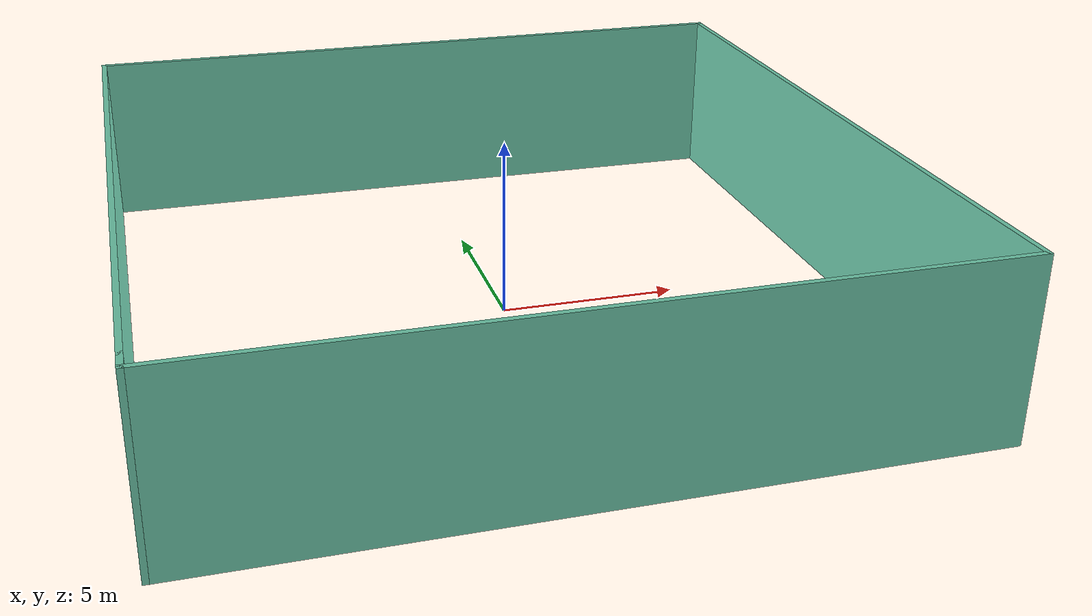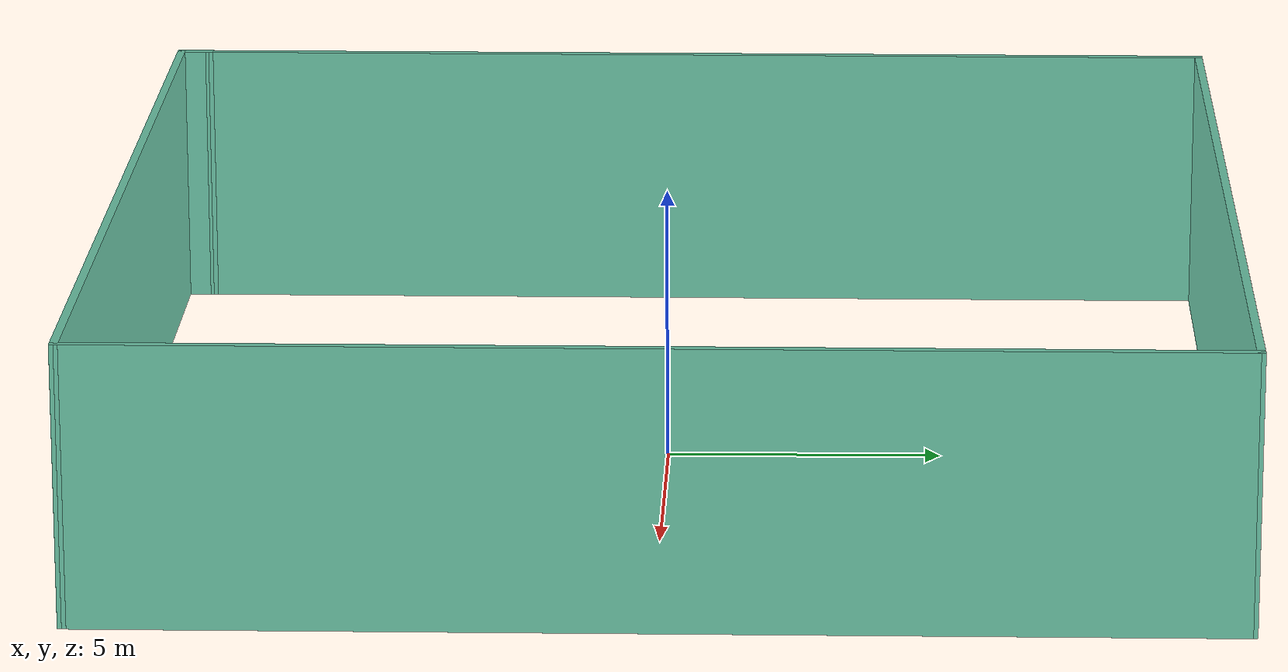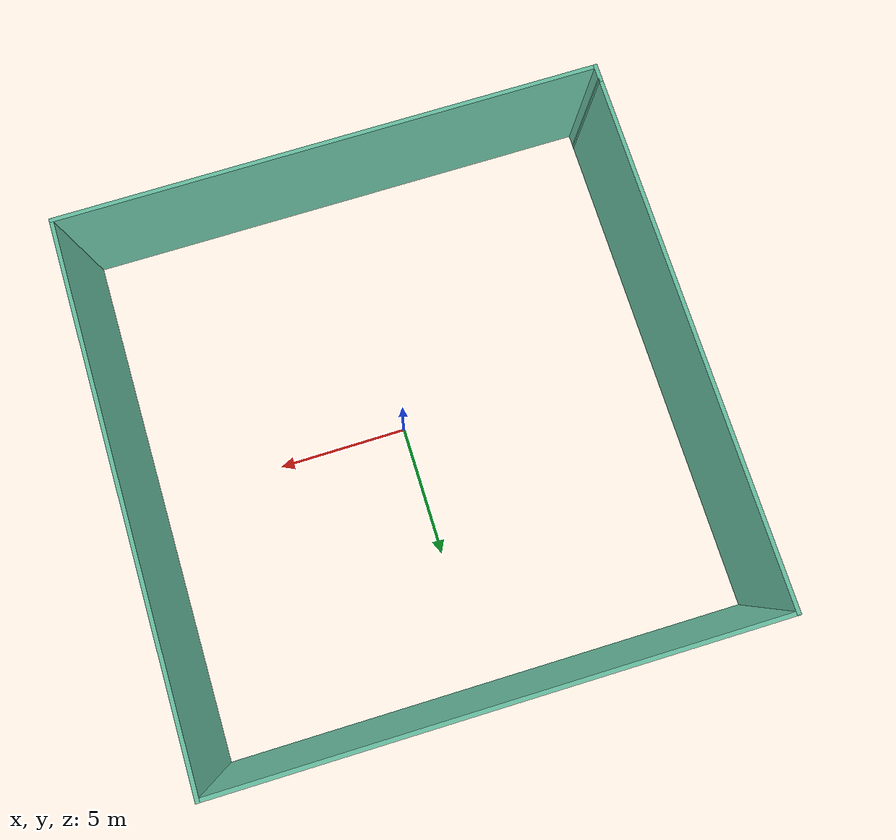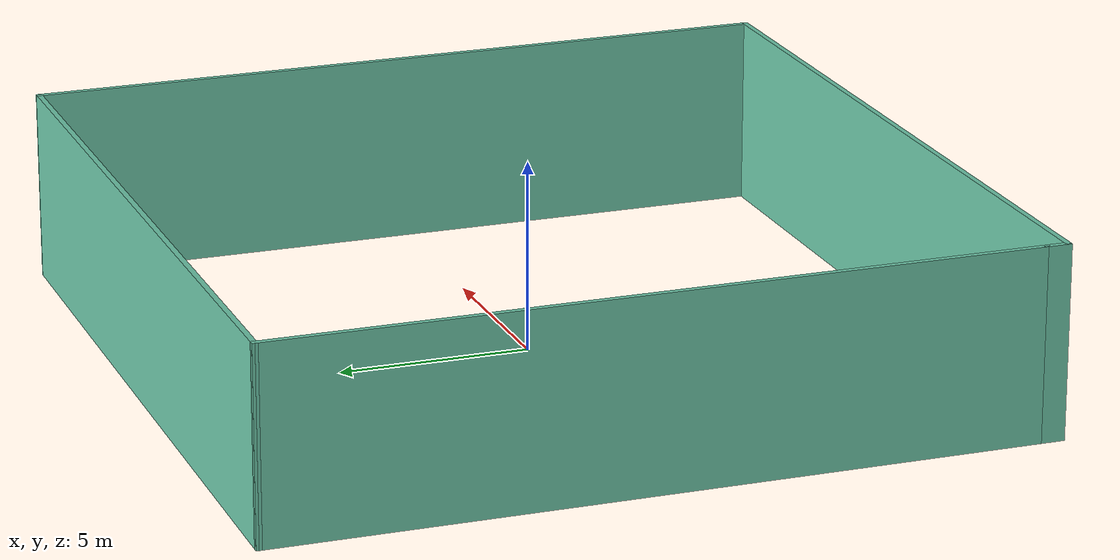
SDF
<?xml version='1.0'?>
<sdf version='1.5'>
  <model name='SurroundingwallsBlue'>
    <pose>-0.237611 0.131199 0 0 -0 0</pose>
    <link name='Wall_0'>
      <collision name='Wall_0_Collision'>
        <geometry>
          <box>
            <size>19.7397 0.15 5</size>
          </box>
        </geometry>
        <pose>0 0 2.5 0 -0 0</pose>
      </collision>
      <visual name='Wall_0_Visual'>
        <pose>0 0 2.5 0 -0 0</pose>
        <geometry>
          <box>
            <size>19.7397 0.15 5</size>
          </box>
        </geometry>
        <material>
          <script>
            <uri>file://media/materials/scripts/gazebo.material</uri>
            <name>Gazebo/Grey</name>
          </script>
          <ambient>0.435294 0.796078 0.67451 1</ambient>
        </material>
      </visual>
      <pose>-10.0499 0.276801 0 0 0 -1.5684</pose>
    </link>
    <link name='Wall_4'>
      <collision name='Wall_4_Collision'>
        <geometry>
          <box>
            <size>20.2503 0.15 5</size>
          </box>
        </geometry>
        <pose>0 0 2.5 0 -0 0</pose>
      </collision>
      <visual name='Wall_4_Visual'>
        <pose>0 0 2.5 0 -0 0</pose>
        <geometry>
          <box>
            <size>20.2503 0.15 5</size>
          </box>
        </geometry>
        <material>
          <script>
            <uri>file://media/materials/scripts/gazebo.material</uri>
            <name>Gazebo/Grey</name>
          </script>
          <ambient>0.435294 0.796078 0.67451 1</ambient>
        </material>
      </visual>
      <pose>-0.023389 10.0183 0 0 0 -0.005323</pose>
    </link>
    <link name='Wall_5'>
      <collision name='Wall_5_Collision'>
        <geometry>
          <box>
            <size>20.1866 0.15 5</size>
          </box>
        </geometry>
        <pose>0 0 2.5 0 -0 0</pose>
      </collision>
      <visual name='Wall_5_Visual'>
        <pose>0 0 2.5 0 -0 0</pose>
        <geometry>
          <box>
            <size>20.1866 0.15 5</size>
          </box>
        </geometry>
        <material>
          <script>
            <uri>file://media/materials/scripts/gazebo.material</uri>
            <name>Gazebo/Grey</name>
          </script>
          <ambient>0.435294 0.796078 0.67451 1</ambient>
        </material>
      </visual>
      <pose>10.0501 -0.053699 0 0 0 -1.56845</pose>
    </link>
    <link name='Wall_6'>
      <collision name='Wall_6_Collision'>
        <geometry>
          <box>
            <size>20.25 0.15 5</size>
          </box>
        </geometry>
        <pose>0 0 2.5 0 -0 0</pose>
      </collision>
      <visual name='Wall_6_Visual'>
        <pose>0 0 2.5 0 -0 0</pose>
        <geometry>
          <box>
            <size>20.25 0.15 5</size>
          </box>
        </geometry>
        <material>
          <script>
            <uri>file://media/materials/scripts/gazebo.material</uri>
            <name>Gazebo/Grey</name>
          </script>
          <ambient>0.435294 0.796078 0.67451 1</ambient>
        </material>
      </visual>
      <pose>0.023611 -10.0722 0 0 -0 3.14159</pose>
    </link>
    <link name='Wall_7'>
      <collision name='Wall_7_Collision'>
        <geometry>
          <box>
            <size>0.704 0.15 5</size>
          </box>
        </geometry>
        <pose>0 0 2.5 0 -0 0</pose>
      </collision>
      <visual name='Wall_7_Visual'>
        <pose>0 0 2.5 0 -0 0</pose>
        <geometry>
          <box>
            <size>0.704 0.15 5</size>
          </box>
        </geometry>
        <material>
          <script>
            <uri>file://media/materials/scripts/gazebo.material</uri>
            <name>Gazebo/Grey</name>
          </script>
          <ambient>0.435294 0.796078 0.67451 1</ambient>
        </material>
      </visual>
      <pose>-10.0264 -9.7952 0 0 -0 1.5708</pose>
    </link>
    <static>1</static>
  </model>
</sdf>
